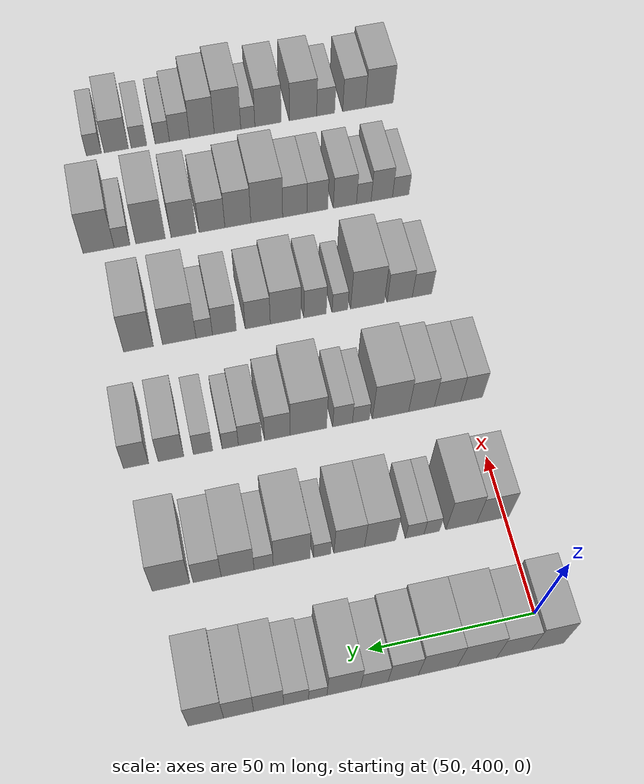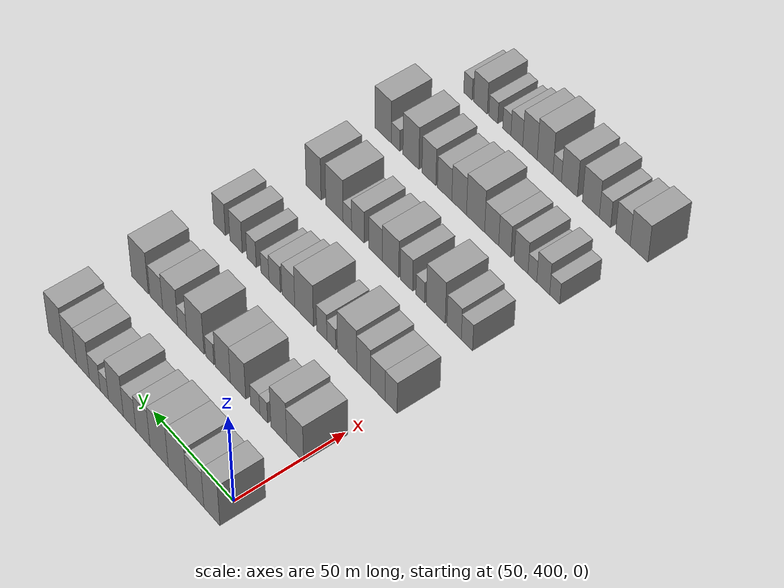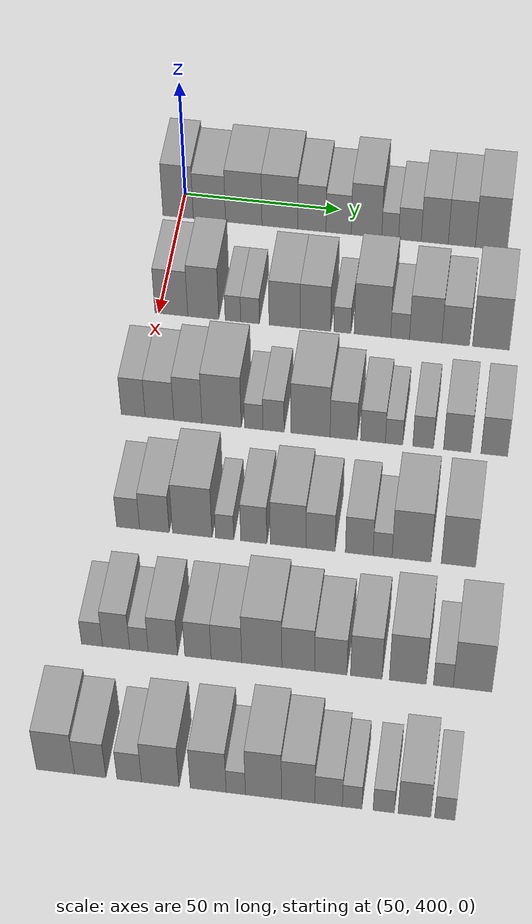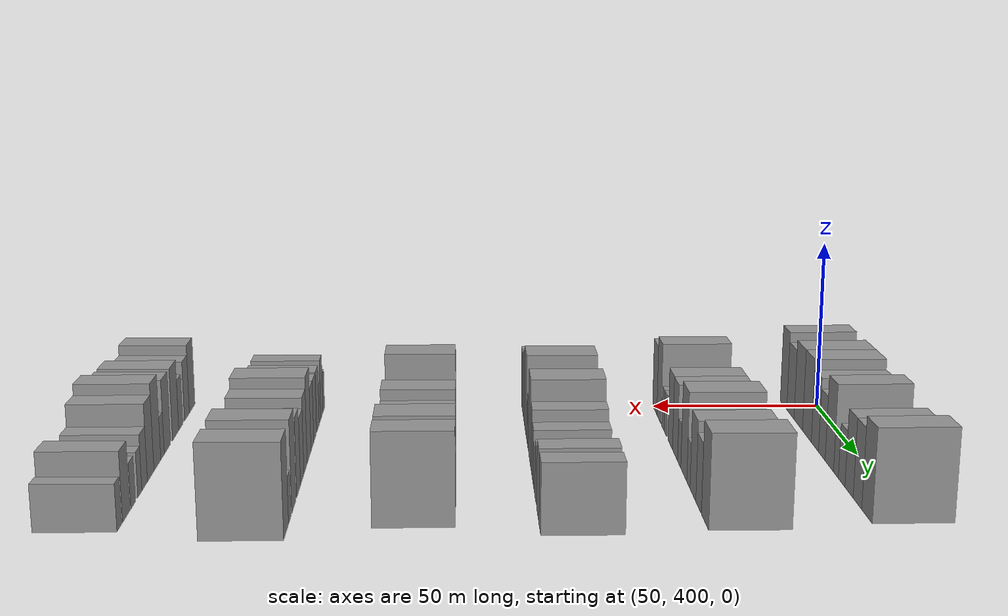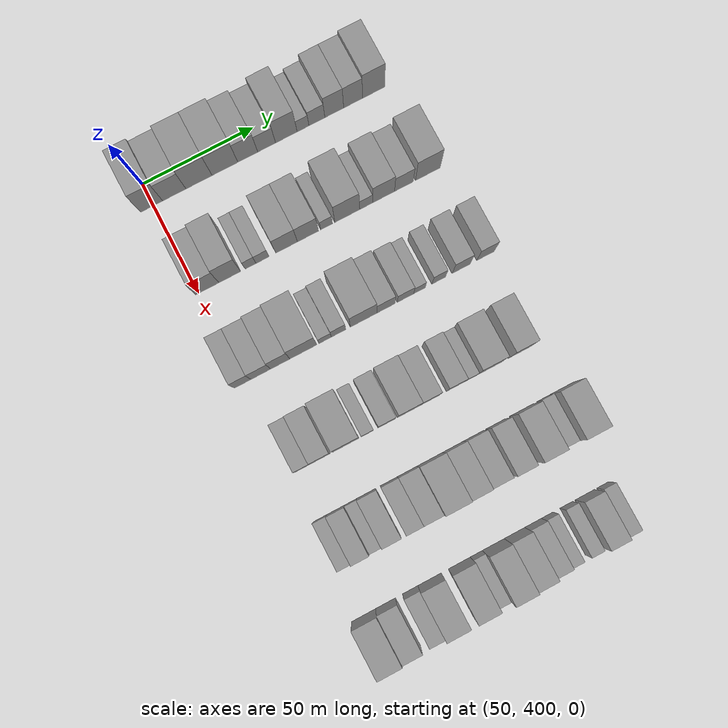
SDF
<sdf version="1.6">
 <world name="default">
  <model name="building_118">
   <static>1</static>
   <pose>50.0000 399.3098 0 0.000000 0.000000 0.000000</pose>
   <link name="link">
    <pose>0 0 12.00 0 0 0</pose>
    <collision name="collision"><geometry><box><size>20.0000 9.7949 24.0000</size></box></geometry></collision>
    <visual name="visual">
     <cast_shadows>0</cast_shadows>
     <geometry><box><size>20.0000 9.7949 24.0000</size></box></geometry>
     <material>
      <script>
       <uri>model://grey_wall/materials/scripts</uri>
       <uri>model://grey_wall/materials/textures</uri>
       <name>vrc/grey_wall</name>
      </script>
     </material>
    </visual>
   </link>
  </model>
  <model name="building_119">
   <static>1</static>
   <pose>50.0000 409.4049 0 0.000000 0.000000 0.000000</pose>
   <link name="link">
    <pose>0 0 10.50 0 0 0</pose>
    <collision name="collision"><geometry><box><size>20.0000 10.3953 21.0000</size></box></geometry></collision>
    <visual name="visual">
     <cast_shadows>0</cast_shadows>
     <geometry><box><size>20.0000 10.3953 21.0000</size></box></geometry>
     <material>
      <script>
       <uri>model://grey_wall/materials/scripts</uri>
       <uri>model://grey_wall/materials/textures</uri>
       <name>vrc/grey_wall</name>
      </script>
     </material>
    </visual>
   </link>
  </model>
  <model name="building_120">
   <static>1</static>
   <pose>50.0000 420.4561 0 0.000000 0.000000 0.000000</pose>
   <link name="link">
    <pose>0 0 12.00 0 0 0</pose>
    <collision name="collision"><geometry><box><size>20.0000 11.7071 24.0000</size></box></geometry></collision>
    <visual name="visual">
     <cast_shadows>0</cast_shadows>
     <geometry><box><size>20.0000 11.7071 24.0000</size></box></geometry>
     <material>
      <script>
       <uri>model://grey_wall/materials/scripts</uri>
       <uri>model://grey_wall/materials/textures</uri>
       <name>vrc/grey_wall</name>
      </script>
     </material>
    </visual>
   </link>
  </model>
  <model name="building_121">
   <static>1</static>
   <pose>50.0000 432.0817 0 0.000000 0.000000 0.000000</pose>
   <link name="link">
    <pose>0 0 12.00 0 0 0</pose>
    <collision name="collision"><geometry><box><size>20.0000 11.5442 24.0000</size></box></geometry></collision>
    <visual name="visual">
     <cast_shadows>0</cast_shadows>
     <geometry><box><size>20.0000 11.5442 24.0000</size></box></geometry>
     <material>
      <script>
       <uri>model://grey_wall/materials/scripts</uri>
       <uri>model://grey_wall/materials/textures</uri>
       <name>vrc/grey_wall</name>
      </script>
     </material>
    </visual>
   </link>
  </model>
  <model name="building_122">
   <static>1</static>
   <pose>50.0000 442.3535 0 0.000000 0.000000 0.000000</pose>
   <link name="link">
    <pose>0 0 10.50 0 0 0</pose>
    <collision name="collision"><geometry><box><size>20.0000 8.9993 21.0000</size></box></geometry></collision>
    <visual name="visual">
     <cast_shadows>0</cast_shadows>
     <geometry><box><size>20.0000 8.9993 21.0000</size></box></geometry>
     <material>
      <script>
       <uri>model://grey_wall/materials/scripts</uri>
       <uri>model://grey_wall/materials/textures</uri>
       <name>vrc/grey_wall</name>
      </script>
     </material>
    </visual>
   </link>
  </model>
  <model name="building_123">
   <static>1</static>
   <pose>50.0000 450.8728 0 0.000000 0.000000 0.000000</pose>
   <link name="link">
    <pose>0 0 9.00 0 0 0</pose>
    <collision name="collision"><geometry><box><size>20.0000 8.0392 18.0000</size></box></geometry></collision>
    <visual name="visual">
     <cast_shadows>0</cast_shadows>
     <geometry><box><size>20.0000 8.0392 18.0000</size></box></geometry>
     <material>
      <script>
       <uri>model://grey_wall/materials/scripts</uri>
       <uri>model://grey_wall/materials/textures</uri>
       <name>vrc/grey_wall</name>
      </script>
     </material>
    </visual>
   </link>
  </model>
  <model name="building_124">
   <static>1</static>
   <pose>50.0000 459.7650 0 0.000000 0.000000 0.000000</pose>
   <link name="link">
    <pose>0 0 12.00 0 0 0</pose>
    <collision name="collision"><geometry><box><size>20.0000 9.7453 24.0000</size></box></geometry></collision>
    <visual name="visual">
     <cast_shadows>0</cast_shadows>
     <geometry><box><size>20.0000 9.7453 24.0000</size></box></geometry>
     <material>
      <script>
       <uri>model://grey_wall/materials/scripts</uri>
       <uri>model://grey_wall/materials/textures</uri>
       <name>vrc/grey_wall</name>
      </script>
     </material>
    </visual>
   </link>
  </model>
  <model name="building_125">
   <static>1</static>
   <pose>50.0000 467.3127 0 0.000000 0.000000 0.000000</pose>
   <link name="link">
    <pose>0 0 6.00 0 0 0</pose>
    <collision name="collision"><geometry><box><size>20.0000 5.3501 12.0000</size></box></geometry></collision>
    <visual name="visual">
     <cast_shadows>0</cast_shadows>
     <geometry><box><size>20.0000 5.3501 12.0000</size></box></geometry>
     <material>
      <script>
       <uri>model://grey_wall/materials/scripts</uri>
       <uri>model://grey_wall/materials/textures</uri>
       <name>vrc/grey_wall</name>
      </script>
     </material>
    </visual>
   </link>
  </model>
  <model name="building_126">
   <static>1</static>
   <pose>50.0000 473.5926 0 0.000000 0.000000 0.000000</pose>
   <link name="link">
    <pose>0 0 7.50 0 0 0</pose>
    <collision name="collision"><geometry><box><size>20.0000 7.2097 15.0000</size></box></geometry></collision>
    <visual name="visual">
     <cast_shadows>0</cast_shadows>
     <geometry><box><size>20.0000 7.2097 15.0000</size></box></geometry>
     <material>
      <script>
       <uri>model://grey_wall/materials/scripts</uri>
       <uri>model://grey_wall/materials/textures</uri>
       <name>vrc/grey_wall</name>
      </script>
     </material>
    </visual>
   </link>
  </model>
  <model name="building_127">
   <static>1</static>
   <pose>50.0000 481.4805 0 0.000000 0.000000 0.000000</pose>
   <link name="link">
    <pose>0 0 10.50 0 0 0</pose>
    <collision name="collision"><geometry><box><size>20.0000 8.5662 21.0000</size></box></geometry></collision>
    <visual name="visual">
     <cast_shadows>0</cast_shadows>
     <geometry><box><size>20.0000 8.5662 21.0000</size></box></geometry>
     <material>
      <script>
       <uri>model://grey_wall/materials/scripts</uri>
       <uri>model://grey_wall/materials/textures</uri>
       <name>vrc/grey_wall</name>
      </script>
     </material>
    </visual>
   </link>
  </model>
  <model name="building_128">
   <static>1</static>
   <pose>50.0000 490.0491 0 0.000000 0.000000 0.000000</pose>
   <link name="link">
    <pose>0 0 10.50 0 0 0</pose>
    <collision name="collision"><geometry><box><size>20.0000 8.5709 21.0000</size></box></geometry></collision>
    <visual name="visual">
     <cast_shadows>0</cast_shadows>
     <geometry><box><size>20.0000 8.5709 21.0000</size></box></geometry>
     <material>
      <script>
       <uri>model://grey_wall/materials/scripts</uri>
       <uri>model://grey_wall/materials/textures</uri>
       <name>vrc/grey_wall</name>
      </script>
     </material>
    </visual>
   </link>
  </model>
  <model name="building_129">
   <static>1</static>
   <pose>50.0000 499.3868 0 0.000000 0.000000 0.000000</pose>
   <link name="link">
    <pose>0 0 12.00 0 0 0</pose>
    <collision name="collision"><geometry><box><size>20.0000 10.1045 24.0000</size></box></geometry></collision>
    <visual name="visual">
     <cast_shadows>0</cast_shadows>
     <geometry><box><size>20.0000 10.1045 24.0000</size></box></geometry>
     <material>
      <script>
       <uri>model://grey_wall/materials/scripts</uri>
       <uri>model://grey_wall/materials/textures</uri>
       <name>vrc/grey_wall</name>
      </script>
     </material>
    </visual>
   </link>
  </model>
  <model name="building_239">
   <static>1</static>
   <pose>90.0000 403.8618 0 0.000000 0.000000 0.000000</pose>
   <link name="link">
    <pose>0 0 10.50 0 0 0</pose>
    <collision name="collision"><geometry><box><size>20.0000 10.2549 21.0000</size></box></geometry></collision>
    <visual name="visual">
     <cast_shadows>0</cast_shadows>
     <geometry><box><size>20.0000 10.2549 21.0000</size></box></geometry>
     <material>
      <script>
       <uri>model://grey_wall/materials/scripts</uri>
       <uri>model://grey_wall/materials/textures</uri>
       <name>vrc/grey_wall</name>
      </script>
     </material>
    </visual>
   </link>
  </model>
  <model name="building_240">
   <static>1</static>
   <pose>90.0000 413.8227 0 0.000000 0.000000 0.000000</pose>
   <link name="link">
    <pose>0 0 12.00 0 0 0</pose>
    <collision name="collision"><geometry><box><size>20.0000 9.6669 24.0000</size></box></geometry></collision>
    <visual name="visual">
     <cast_shadows>0</cast_shadows>
     <geometry><box><size>20.0000 9.6669 24.0000</size></box></geometry>
     <material>
      <script>
       <uri>model://grey_wall/materials/scripts</uri>
       <uri>model://grey_wall/materials/textures</uri>
       <name>vrc/grey_wall</name>
      </script>
     </material>
    </visual>
   </link>
  </model>
  <model name="building_241">
   <static>1</static>
   <pose>90.0000 423.0763 0 0.000000 0.000000 0.000000</pose>
   <link name="link">
    <pose>0 0 6.00 0 0 0</pose>
    <collision name="collision"><geometry><box><size>20.0000 4.8404 12.0000</size></box></geometry></collision>
    <visual name="visual">
     <cast_shadows>0</cast_shadows>
     <geometry><box><size>20.0000 4.8404 12.0000</size></box></geometry>
     <material>
      <script>
       <uri>model://grey_wall/materials/scripts</uri>
       <uri>model://grey_wall/materials/textures</uri>
       <name>vrc/grey_wall</name>
      </script>
     </material>
    </visual>
   </link>
  </model>
  <model name="building_242">
   <static>1</static>
   <pose>90.0000 428.3916 0 0.000000 0.000000 0.000000</pose>
   <link name="link">
    <pose>0 0 6.00 0 0 0</pose>
    <collision name="collision"><geometry><box><size>20.0000 5.7902 12.0000</size></box></geometry></collision>
    <visual name="visual">
     <cast_shadows>0</cast_shadows>
     <geometry><box><size>20.0000 5.7902 12.0000</size></box></geometry>
     <material>
      <script>
       <uri>model://grey_wall/materials/scripts</uri>
       <uri>model://grey_wall/materials/textures</uri>
       <name>vrc/grey_wall</name>
      </script>
     </material>
    </visual>
   </link>
  </model>
  <model name="building_243">
   <static>1</static>
   <pose>90.0000 439.1144 0 0.000000 0.000000 0.000000</pose>
   <link name="link">
    <pose>0 0 10.50 0 0 0</pose>
    <collision name="collision"><geometry><box><size>20.0000 9.6554 21.0000</size></box></geometry></collision>
    <visual name="visual">
     <cast_shadows>0</cast_shadows>
     <geometry><box><size>20.0000 9.6554 21.0000</size></box></geometry>
     <material>
      <script>
       <uri>model://grey_wall/materials/scripts</uri>
       <uri>model://grey_wall/materials/textures</uri>
       <name>vrc/grey_wall</name>
      </script>
     </material>
    </visual>
   </link>
  </model>
  <model name="building_244">
   <static>1</static>
   <pose>90.0000 448.6526 0 0.000000 0.000000 0.000000</pose>
   <link name="link">
    <pose>0 0 10.50 0 0 0</pose>
    <collision name="collision"><geometry><box><size>20.0000 9.4209 21.0000</size></box></geometry></collision>
    <visual name="visual">
     <cast_shadows>0</cast_shadows>
     <geometry><box><size>20.0000 9.4209 21.0000</size></box></geometry>
     <material>
      <script>
       <uri>model://grey_wall/materials/scripts</uri>
       <uri>model://grey_wall/materials/textures</uri>
       <name>vrc/grey_wall</name>
      </script>
     </material>
    </visual>
   </link>
  </model>
  <model name="building_245">
   <static>1</static>
   <pose>90.0000 457.0081 0 0.000000 0.000000 0.000000</pose>
   <link name="link">
    <pose>0 0 6.00 0 0 0</pose>
    <collision name="collision"><geometry><box><size>20.0000 5.2902 12.0000</size></box></geometry></collision>
    <visual name="visual">
     <cast_shadows>0</cast_shadows>
     <geometry><box><size>20.0000 5.2902 12.0000</size></box></geometry>
     <material>
      <script>
       <uri>model://grey_wall/materials/scripts</uri>
       <uri>model://grey_wall/materials/textures</uri>
       <name>vrc/grey_wall</name>
      </script>
     </material>
    </visual>
   </link>
  </model>
  <model name="building_246">
   <static>1</static>
   <pose>90.0000 466.2679 0 0.000000 0.000000 0.000000</pose>
   <link name="link">
    <pose>0 0 12.00 0 0 0</pose>
    <collision name="collision"><geometry><box><size>20.0000 11.2294 24.0000</size></box></geometry></collision>
    <visual name="visual">
     <cast_shadows>0</cast_shadows>
     <geometry><box><size>20.0000 11.2294 24.0000</size></box></geometry>
     <material>
      <script>
       <uri>model://grey_wall/materials/scripts</uri>
       <uri>model://grey_wall/materials/textures</uri>
       <name>vrc/grey_wall</name>
      </script>
     </material>
    </visual>
   </link>
  </model>
  <model name="building_247">
   <static>1</static>
   <pose>90.0000 474.7799 0 0.000000 0.000000 0.000000</pose>
   <link name="link">
    <pose>0 0 6.00 0 0 0</pose>
    <collision name="collision"><geometry><box><size>20.0000 5.7946 12.0000</size></box></geometry></collision>
    <visual name="visual">
     <cast_shadows>0</cast_shadows>
     <geometry><box><size>20.0000 5.7946 12.0000</size></box></geometry>
     <material>
      <script>
       <uri>model://grey_wall/materials/scripts</uri>
       <uri>model://grey_wall/materials/textures</uri>
       <name>vrc/grey_wall</name>
      </script>
     </material>
    </visual>
   </link>
  </model>
  <model name="building_248">
   <static>1</static>
   <pose>90.0000 482.6432 0 0.000000 0.000000 0.000000</pose>
   <link name="link">
    <pose>0 0 10.50 0 0 0</pose>
    <collision name="collision"><geometry><box><size>20.0000 9.9320 21.0000</size></box></geometry></collision>
    <visual name="visual">
     <cast_shadows>0</cast_shadows>
     <geometry><box><size>20.0000 9.9320 21.0000</size></box></geometry>
     <material>
      <script>
       <uri>model://grey_wall/materials/scripts</uri>
       <uri>model://grey_wall/materials/textures</uri>
       <name>vrc/grey_wall</name>
      </script>
     </material>
    </visual>
   </link>
  </model>
  <model name="building_249">
   <static>1</static>
   <pose>90.0000 491.8241 0 0.000000 0.000000 0.000000</pose>
   <link name="link">
    <pose>0 0 9.00 0 0 0</pose>
    <collision name="collision"><geometry><box><size>20.0000 8.4297 18.0000</size></box></geometry></collision>
    <visual name="visual">
     <cast_shadows>0</cast_shadows>
     <geometry><box><size>20.0000 8.4297 18.0000</size></box></geometry>
     <material>
      <script>
       <uri>model://grey_wall/materials/scripts</uri>
       <uri>model://grey_wall/materials/textures</uri>
       <name>vrc/grey_wall</name>
      </script>
     </material>
    </visual>
   </link>
  </model>
  <model name="building_250">
   <static>1</static>
   <pose>90.0000 502.6548 0 0.000000 0.000000 0.000000</pose>
   <link name="link">
    <pose>0 0 12.00 0 0 0</pose>
    <collision name="collision"><geometry><box><size>20.0000 11.2319 24.0000</size></box></geometry></collision>
    <visual name="visual">
     <cast_shadows>0</cast_shadows>
     <geometry><box><size>20.0000 11.2319 24.0000</size></box></geometry>
     <material>
      <script>
       <uri>model://grey_wall/materials/scripts</uri>
       <uri>model://grey_wall/materials/textures</uri>
       <name>vrc/grey_wall</name>
      </script>
     </material>
    </visual>
   </link>
  </model>
  <model name="building_373">
   <static>1</static>
   <pose>130.0000 399.0765 0 0.000000 0.000000 0.000000</pose>
   <link name="link">
    <pose>0 0 9.00 0 0 0</pose>
    <collision name="collision"><geometry><box><size>20.0000 7.2151 18.0000</size></box></geometry></collision>
    <visual name="visual">
     <cast_shadows>0</cast_shadows>
     <geometry><box><size>20.0000 7.2151 18.0000</size></box></geometry>
     <material>
      <script>
       <uri>model://grey_wall/materials/scripts</uri>
       <uri>model://grey_wall/materials/textures</uri>
       <name>vrc/grey_wall</name>
      </script>
     </material>
    </visual>
   </link>
  </model>
  <model name="building_374">
   <static>1</static>
   <pose>130.0000 407.0105 0 0.000000 0.000000 0.000000</pose>
   <link name="link">
    <pose>0 0 9.00 0 0 0</pose>
    <collision name="collision"><geometry><box><size>20.0000 8.6527 18.0000</size></box></geometry></collision>
    <visual name="visual">
     <cast_shadows>0</cast_shadows>
     <geometry><box><size>20.0000 8.6527 18.0000</size></box></geometry>
     <material>
      <script>
       <uri>model://grey_wall/materials/scripts</uri>
       <uri>model://grey_wall/materials/textures</uri>
       <name>vrc/grey_wall</name>
      </script>
     </material>
    </visual>
   </link>
  </model>
  <model name="building_375">
   <static>1</static>
   <pose>130.0000 415.5756 0 0.000000 0.000000 0.000000</pose>
   <link name="link">
    <pose>0 0 10.50 0 0 0</pose>
    <collision name="collision"><geometry><box><size>20.0000 8.4777 21.0000</size></box></geometry></collision>
    <visual name="visual">
     <cast_shadows>0</cast_shadows>
     <geometry><box><size>20.0000 8.4777 21.0000</size></box></geometry>
     <material>
      <script>
       <uri>model://grey_wall/materials/scripts</uri>
       <uri>model://grey_wall/materials/textures</uri>
       <name>vrc/grey_wall</name>
      </script>
     </material>
    </visual>
   </link>
  </model>
  <model name="building_376">
   <static>1</static>
   <pose>130.0000 425.7282 0 0.000000 0.000000 0.000000</pose>
   <link name="link">
    <pose>0 0 12.00 0 0 0</pose>
    <collision name="collision"><geometry><box><size>20.0000 11.8275 24.0000</size></box></geometry></collision>
    <visual name="visual">
     <cast_shadows>0</cast_shadows>
     <geometry><box><size>20.0000 11.8275 24.0000</size></box></geometry>
     <material>
      <script>
       <uri>model://grey_wall/materials/scripts</uri>
       <uri>model://grey_wall/materials/textures</uri>
       <name>vrc/grey_wall</name>
      </script>
     </material>
    </visual>
   </link>
  </model>
  <model name="building_377">
   <static>1</static>
   <pose>130.0000 435.3928 0 0.000000 0.000000 0.000000</pose>
   <link name="link">
    <pose>0 0 6.00 0 0 0</pose>
    <collision name="collision"><geometry><box><size>20.0000 5.5018 12.0000</size></box></geometry></collision>
    <visual name="visual">
     <cast_shadows>0</cast_shadows>
     <geometry><box><size>20.0000 5.5018 12.0000</size></box></geometry>
     <material>
      <script>
       <uri>model://grey_wall/materials/scripts</uri>
       <uri>model://grey_wall/materials/textures</uri>
       <name>vrc/grey_wall</name>
      </script>
     </material>
    </visual>
   </link>
  </model>
  <model name="building_378">
   <static>1</static>
   <pose>130.0000 441.3277 0 0.000000 0.000000 0.000000</pose>
   <link name="link">
    <pose>0 0 7.50 0 0 0</pose>
    <collision name="collision"><geometry><box><size>20.0000 6.3680 15.0000</size></box></geometry></collision>
    <visual name="visual">
     <cast_shadows>0</cast_shadows>
     <geometry><box><size>20.0000 6.3680 15.0000</size></box></geometry>
     <material>
      <script>
       <uri>model://grey_wall/materials/scripts</uri>
       <uri>model://grey_wall/materials/textures</uri>
       <name>vrc/grey_wall</name>
      </script>
     </material>
    </visual>
   </link>
  </model>
  <model name="building_379">
   <static>1</static>
   <pose>130.0000 452.3756 0 0.000000 0.000000 0.000000</pose>
   <link name="link">
    <pose>0 0 12.00 0 0 0</pose>
    <collision name="collision"><geometry><box><size>20.0000 11.7278 24.0000</size></box></geometry></collision>
    <visual name="visual">
     <cast_shadows>0</cast_shadows>
     <geometry><box><size>20.0000 11.7278 24.0000</size></box></geometry>
     <material>
      <script>
       <uri>model://grey_wall/materials/scripts</uri>
       <uri>model://grey_wall/materials/textures</uri>
       <name>vrc/grey_wall</name>
      </script>
     </material>
    </visual>
   </link>
  </model>
  <model name="building_380">
   <static>1</static>
   <pose>130.0000 462.3001 0 0.000000 0.000000 0.000000</pose>
   <link name="link">
    <pose>0 0 9.00 0 0 0</pose>
    <collision name="collision"><geometry><box><size>20.0000 8.1212 18.0000</size></box></geometry></collision>
    <visual name="visual">
     <cast_shadows>0</cast_shadows>
     <geometry><box><size>20.0000 8.1212 18.0000</size></box></geometry>
     <material>
      <script>
       <uri>model://grey_wall/materials/scripts</uri>
       <uri>model://grey_wall/materials/textures</uri>
       <name>vrc/grey_wall</name>
      </script>
     </material>
    </visual>
   </link>
  </model>
  <model name="building_381">
   <static>1</static>
   <pose>130.0000 471.0426 0 0.000000 0.000000 0.000000</pose>
   <link name="link">
    <pose>0 0 7.50 0 0 0</pose>
    <collision name="collision"><geometry><box><size>20.0000 7.3638 15.0000</size></box></geometry></collision>
    <visual name="visual">
     <cast_shadows>0</cast_shadows>
     <geometry><box><size>20.0000 7.3638 15.0000</size></box></geometry>
     <material>
      <script>
       <uri>model://grey_wall/materials/scripts</uri>
       <uri>model://grey_wall/materials/textures</uri>
       <name>vrc/grey_wall</name>
      </script>
     </material>
    </visual>
   </link>
  </model>
  <model name="building_382">
   <static>1</static>
   <pose>130.0000 477.3054 0 0.000000 0.000000 0.000000</pose>
   <link name="link">
    <pose>0 0 6.00 0 0 0</pose>
    <collision name="collision"><geometry><box><size>20.0000 5.1617 12.0000</size></box></geometry></collision>
    <visual name="visual">
     <cast_shadows>0</cast_shadows>
     <geometry><box><size>20.0000 5.1617 12.0000</size></box></geometry>
     <material>
      <script>
       <uri>model://grey_wall/materials/scripts</uri>
       <uri>model://grey_wall/materials/textures</uri>
       <name>vrc/grey_wall</name>
      </script>
     </material>
    </visual>
   </link>
  </model>
  <model name="building_383">
   <static>1</static>
   <pose>130.0000 485.9417 0 0.000000 0.000000 0.000000</pose>
   <link name="link">
    <pose>0 0 7.50 0 0 0</pose>
    <collision name="collision"><geometry><box><size>20.0000 6.1109 15.0000</size></box></geometry></collision>
    <visual name="visual">
     <cast_shadows>0</cast_shadows>
     <geometry><box><size>20.0000 6.1109 15.0000</size></box></geometry>
     <material>
      <script>
       <uri>model://grey_wall/materials/scripts</uri>
       <uri>model://grey_wall/materials/textures</uri>
       <name>vrc/grey_wall</name>
      </script>
     </material>
    </visual>
   </link>
  </model>
  <model name="building_384">
   <static>1</static>
   <pose>130.0000 496.0381 0 0.000000 0.000000 0.000000</pose>
   <link name="link">
    <pose>0 0 9.00 0 0 0</pose>
    <collision name="collision"><geometry><box><size>20.0000 8.0819 18.0000</size></box></geometry></collision>
    <visual name="visual">
     <cast_shadows>0</cast_shadows>
     <geometry><box><size>20.0000 8.0819 18.0000</size></box></geometry>
     <material>
      <script>
       <uri>model://grey_wall/materials/scripts</uri>
       <uri>model://grey_wall/materials/textures</uri>
       <name>vrc/grey_wall</name>
      </script>
     </material>
    </visual>
   </link>
  </model>
  <model name="building_385">
   <static>1</static>
   <pose>130.0000 507.0114 0 0.000000 0.000000 0.000000</pose>
   <link name="link">
    <pose>0 0 9.00 0 0 0</pose>
    <collision name="collision"><geometry><box><size>20.0000 7.8647 18.0000</size></box></geometry></collision>
    <visual name="visual">
     <cast_shadows>0</cast_shadows>
     <geometry><box><size>20.0000 7.8647 18.0000</size></box></geometry>
     <material>
      <script>
       <uri>model://grey_wall/materials/scripts</uri>
       <uri>model://grey_wall/materials/textures</uri>
       <name>vrc/grey_wall</name>
      </script>
     </material>
    </visual>
   </link>
  </model>
  <model name="building_521">
   <static>1</static>
   <pose>170.0000 404.7446 0 0.000000 0.000000 0.000000</pose>
   <link name="link">
    <pose>0 0 7.50 0 0 0</pose>
    <collision name="collision"><geometry><box><size>20.0000 6.6881 15.0000</size></box></geometry></collision>
    <visual name="visual">
     <cast_shadows>0</cast_shadows>
     <geometry><box><size>20.0000 6.6881 15.0000</size></box></geometry>
     <material>
      <script>
       <uri>model://grey_wall/materials/scripts</uri>
       <uri>model://grey_wall/materials/textures</uri>
       <name>vrc/grey_wall</name>
      </script>
     </material>
    </visual>
   </link>
  </model>
  <model name="building_522">
   <static>1</static>
   <pose>170.0000 412.3998 0 0.000000 0.000000 0.000000</pose>
   <link name="link">
    <pose>0 0 9.00 0 0 0</pose>
    <collision name="collision"><geometry><box><size>20.0000 8.6223 18.0000</size></box></geometry></collision>
    <visual name="visual">
     <cast_shadows>0</cast_shadows>
     <geometry><box><size>20.0000 8.6223 18.0000</size></box></geometry>
     <material>
      <script>
       <uri>model://grey_wall/materials/scripts</uri>
       <uri>model://grey_wall/materials/textures</uri>
       <name>vrc/grey_wall</name>
      </script>
     </material>
    </visual>
   </link>
  </model>
  <model name="building_523">
   <static>1</static>
   <pose>170.0000 423.4497 0 0.000000 0.000000 0.000000</pose>
   <link name="link">
    <pose>0 0 12.00 0 0 0</pose>
    <collision name="collision"><geometry><box><size>20.0000 11.4775 24.0000</size></box></geometry></collision>
    <visual name="visual">
     <cast_shadows>0</cast_shadows>
     <geometry><box><size>20.0000 11.4775 24.0000</size></box></geometry>
     <material>
      <script>
       <uri>model://grey_wall/materials/scripts</uri>
       <uri>model://grey_wall/materials/textures</uri>
       <name>vrc/grey_wall</name>
      </script>
     </material>
    </visual>
   </link>
  </model>
  <model name="building_524">
   <static>1</static>
   <pose>170.0000 432.8402 0 0.000000 0.000000 0.000000</pose>
   <link name="link">
    <pose>0 0 6.00 0 0 0</pose>
    <collision name="collision"><geometry><box><size>20.0000 5.3037 12.0000</size></box></geometry></collision>
    <visual name="visual">
     <cast_shadows>0</cast_shadows>
     <geometry><box><size>20.0000 5.3037 12.0000</size></box></geometry>
     <material>
      <script>
       <uri>model://grey_wall/materials/scripts</uri>
       <uri>model://grey_wall/materials/textures</uri>
       <name>vrc/grey_wall</name>
      </script>
     </material>
    </visual>
   </link>
  </model>
  <model name="building_525">
   <static>1</static>
   <pose>170.0000 441.2734 0 0.000000 0.000000 0.000000</pose>
   <link name="link">
    <pose>0 0 9.00 0 0 0</pose>
    <collision name="collision"><geometry><box><size>20.0000 7.5625 18.0000</size></box></geometry></collision>
    <visual name="visual">
     <cast_shadows>0</cast_shadows>
     <geometry><box><size>20.0000 7.5625 18.0000</size></box></geometry>
     <material>
      <script>
       <uri>model://grey_wall/materials/scripts</uri>
       <uri>model://grey_wall/materials/textures</uri>
       <name>vrc/grey_wall</name>
      </script>
     </material>
    </visual>
   </link>
  </model>
  <model name="building_526">
   <static>1</static>
   <pose>170.0000 451.2049 0 0.000000 0.000000 0.000000</pose>
   <link name="link">
    <pose>0 0 10.50 0 0 0</pose>
    <collision name="collision"><geometry><box><size>20.0000 10.3005 21.0000</size></box></geometry></collision>
    <visual name="visual">
     <cast_shadows>0</cast_shadows>
     <geometry><box><size>20.0000 10.3005 21.0000</size></box></geometry>
     <material>
      <script>
       <uri>model://grey_wall/materials/scripts</uri>
       <uri>model://grey_wall/materials/textures</uri>
       <name>vrc/grey_wall</name>
      </script>
     </material>
    </visual>
   </link>
  </model>
  <model name="building_527">
   <static>1</static>
   <pose>170.0000 460.5320 0 0.000000 0.000000 0.000000</pose>
   <link name="link">
    <pose>0 0 9.00 0 0 0</pose>
    <collision name="collision"><geometry><box><size>20.0000 8.3538 18.0000</size></box></geometry></collision>
    <visual name="visual">
     <cast_shadows>0</cast_shadows>
     <geometry><box><size>20.0000 8.3538 18.0000</size></box></geometry>
     <material>
      <script>
       <uri>model://grey_wall/materials/scripts</uri>
       <uri>model://grey_wall/materials/textures</uri>
       <name>vrc/grey_wall</name>
      </script>
     </material>
    </visual>
   </link>
  </model>
  <model name="building_528">
   <static>1</static>
   <pose>170.0000 471.6842 0 0.000000 0.000000 0.000000</pose>
   <link name="link">
    <pose>0 0 9.00 0 0 0</pose>
    <collision name="collision"><geometry><box><size>20.0000 7.9505 18.0000</size></box></geometry></collision>
    <visual name="visual">
     <cast_shadows>0</cast_shadows>
     <geometry><box><size>20.0000 7.9505 18.0000</size></box></geometry>
     <material>
      <script>
       <uri>model://grey_wall/materials/scripts</uri>
       <uri>model://grey_wall/materials/textures</uri>
       <name>vrc/grey_wall</name>
      </script>
     </material>
    </visual>
   </link>
  </model>
  <model name="building_529">
   <static>1</static>
   <pose>170.0000 478.3830 0 0.000000 0.000000 0.000000</pose>
   <link name="link">
    <pose>0 0 6.00 0 0 0</pose>
    <collision name="collision"><geometry><box><size>20.0000 5.4470 12.0000</size></box></geometry></collision>
    <visual name="visual">
     <cast_shadows>0</cast_shadows>
     <geometry><box><size>20.0000 5.4470 12.0000</size></box></geometry>
     <material>
      <script>
       <uri>model://grey_wall/materials/scripts</uri>
       <uri>model://grey_wall/materials/textures</uri>
       <name>vrc/grey_wall</name>
      </script>
     </material>
    </visual>
   </link>
  </model>
  <model name="building_530">
   <static>1</static>
   <pose>170.0000 486.6627 0 0.000000 0.000000 0.000000</pose>
   <link name="link">
    <pose>0 0 12.00 0 0 0</pose>
    <collision name="collision"><geometry><box><size>20.0000 11.1124 24.0000</size></box></geometry></collision>
    <visual name="visual">
     <cast_shadows>0</cast_shadows>
     <geometry><box><size>20.0000 11.1124 24.0000</size></box></geometry>
     <material>
      <script>
       <uri>model://grey_wall/materials/scripts</uri>
       <uri>model://grey_wall/materials/textures</uri>
       <name>vrc/grey_wall</name>
      </script>
     </material>
    </visual>
   </link>
  </model>
  <model name="building_531">
   <static>1</static>
   <pose>170.0000 500.1179 0 0.000000 0.000000 0.000000</pose>
   <link name="link">
    <pose>0 0 12.00 0 0 0</pose>
    <collision name="collision"><geometry><box><size>20.0000 9.7980 24.0000</size></box></geometry></collision>
    <visual name="visual">
     <cast_shadows>0</cast_shadows>
     <geometry><box><size>20.0000 9.7980 24.0000</size></box></geometry>
     <material>
      <script>
       <uri>model://grey_wall/materials/scripts</uri>
       <uri>model://grey_wall/materials/textures</uri>
       <name>vrc/grey_wall</name>
      </script>
     </material>
    </visual>
   </link>
  </model>
  <model name="building_651">
   <static>1</static>
   <pose>210.0000 401.7601 0 0.000000 0.000000 0.000000</pose>
   <link name="link">
    <pose>0 0 6.00 0 0 0</pose>
    <collision name="collision"><geometry><box><size>20.0000 5.9090 12.0000</size></box></geometry></collision>
    <visual name="visual">
     <cast_shadows>0</cast_shadows>
     <geometry><box><size>20.0000 5.9090 12.0000</size></box></geometry>
     <material>
      <script>
       <uri>model://grey_wall/materials/scripts</uri>
       <uri>model://grey_wall/materials/textures</uri>
       <name>vrc/grey_wall</name>
      </script>
     </material>
    </visual>
   </link>
  </model>
  <model name="building_652">
   <static>1</static>
   <pose>210.0000 408.5396 0 0.000000 0.000000 0.000000</pose>
   <link name="link">
    <pose>0 0 9.00 0 0 0</pose>
    <collision name="collision"><geometry><box><size>20.0000 7.6499 18.0000</size></box></geometry></collision>
    <visual name="visual">
     <cast_shadows>0</cast_shadows>
     <geometry><box><size>20.0000 7.6499 18.0000</size></box></geometry>
     <material>
      <script>
       <uri>model://grey_wall/materials/scripts</uri>
       <uri>model://grey_wall/materials/textures</uri>
       <name>vrc/grey_wall</name>
      </script>
     </material>
    </visual>
   </link>
  </model>
  <model name="building_653">
   <static>1</static>
   <pose>210.0000 414.9792 0 0.000000 0.000000 0.000000</pose>
   <link name="link">
    <pose>0 0 6.00 0 0 0</pose>
    <collision name="collision"><geometry><box><size>20.0000 5.2293 12.0000</size></box></geometry></collision>
    <visual name="visual">
     <cast_shadows>0</cast_shadows>
     <geometry><box><size>20.0000 5.2293 12.0000</size></box></geometry>
     <material>
      <script>
       <uri>model://grey_wall/materials/scripts</uri>
       <uri>model://grey_wall/materials/textures</uri>
       <name>vrc/grey_wall</name>
      </script>
     </material>
    </visual>
   </link>
  </model>
  <model name="building_654">
   <static>1</static>
   <pose>210.0000 421.7200 0 0.000000 0.000000 0.000000</pose>
   <link name="link">
    <pose>0 0 9.00 0 0 0</pose>
    <collision name="collision"><geometry><box><size>20.0000 8.2524 18.0000</size></box></geometry></collision>
    <visual name="visual">
     <cast_shadows>0</cast_shadows>
     <geometry><box><size>20.0000 8.2524 18.0000</size></box></geometry>
     <material>
      <script>
       <uri>model://grey_wall/materials/scripts</uri>
       <uri>model://grey_wall/materials/textures</uri>
       <name>vrc/grey_wall</name>
      </script>
     </material>
    </visual>
   </link>
  </model>
  <model name="building_655">
   <static>1</static>
   <pose>210.0000 431.5353 0 0.000000 0.000000 0.000000</pose>
   <link name="link">
    <pose>0 0 9.00 0 0 0</pose>
    <collision name="collision"><geometry><box><size>20.0000 7.3783 18.0000</size></box></geometry></collision>
    <visual name="visual">
     <cast_shadows>0</cast_shadows>
     <geometry><box><size>20.0000 7.3783 18.0000</size></box></geometry>
     <material>
      <script>
       <uri>model://grey_wall/materials/scripts</uri>
       <uri>model://grey_wall/materials/textures</uri>
       <name>vrc/grey_wall</name>
      </script>
     </material>
    </visual>
   </link>
  </model>
  <model name="building_656">
   <static>1</static>
   <pose>210.0000 439.5042 0 0.000000 0.000000 0.000000</pose>
   <link name="link">
    <pose>0 0 9.00 0 0 0</pose>
    <collision name="collision"><geometry><box><size>20.0000 8.5594 18.0000</size></box></geometry></collision>
    <visual name="visual">
     <cast_shadows>0</cast_shadows>
     <geometry><box><size>20.0000 8.5594 18.0000</size></box></geometry>
     <material>
      <script>
       <uri>model://grey_wall/materials/scripts</uri>
       <uri>model://grey_wall/materials/textures</uri>
       <name>vrc/grey_wall</name>
      </script>
     </material>
    </visual>
   </link>
  </model>
  <model name="building_657">
   <static>1</static>
   <pose>210.0000 449.3596 0 0.000000 0.000000 0.000000</pose>
   <link name="link">
    <pose>0 0 12.00 0 0 0</pose>
    <collision name="collision"><geometry><box><size>20.0000 11.1515 24.0000</size></box></geometry></collision>
    <visual name="visual">
     <cast_shadows>0</cast_shadows>
     <geometry><box><size>20.0000 11.1515 24.0000</size></box></geometry>
     <material>
      <script>
       <uri>model://grey_wall/materials/scripts</uri>
       <uri>model://grey_wall/materials/textures</uri>
       <name>vrc/grey_wall</name>
      </script>
     </material>
    </visual>
   </link>
  </model>
  <model name="building_658">
   <static>1</static>
   <pose>210.0000 459.4851 0 0.000000 0.000000 0.000000</pose>
   <link name="link">
    <pose>0 0 10.50 0 0 0</pose>
    <collision name="collision"><geometry><box><size>20.0000 9.0993 21.0000</size></box></geometry></collision>
    <visual name="visual">
     <cast_shadows>0</cast_shadows>
     <geometry><box><size>20.0000 9.0993 21.0000</size></box></geometry>
     <material>
      <script>
       <uri>model://grey_wall/materials/scripts</uri>
       <uri>model://grey_wall/materials/textures</uri>
       <name>vrc/grey_wall</name>
      </script>
     </material>
    </visual>
   </link>
  </model>
  <model name="building_659">
   <static>1</static>
   <pose>210.0000 468.5243 0 0.000000 0.000000 0.000000</pose>
   <link name="link">
    <pose>0 0 9.00 0 0 0</pose>
    <collision name="collision"><geometry><box><size>20.0000 8.9791 18.0000</size></box></geometry></collision>
    <visual name="visual">
     <cast_shadows>0</cast_shadows>
     <geometry><box><size>20.0000 8.9791 18.0000</size></box></geometry>
     <material>
      <script>
       <uri>model://grey_wall/materials/scripts</uri>
       <uri>model://grey_wall/materials/textures</uri>
       <name>vrc/grey_wall</name>
      </script>
     </material>
    </visual>
   </link>
  </model>
  <model name="building_660">
   <static>1</static>
   <pose>210.0000 478.3782 0 0.000000 0.000000 0.000000</pose>
   <link name="link">
    <pose>0 0 10.50 0 0 0</pose>
    <collision name="collision"><geometry><box><size>20.0000 8.7289 21.0000</size></box></geometry></collision>
    <visual name="visual">
     <cast_shadows>0</cast_shadows>
     <geometry><box><size>20.0000 8.7289 21.0000</size></box></geometry>
     <material>
      <script>
       <uri>model://grey_wall/materials/scripts</uri>
       <uri>model://grey_wall/materials/textures</uri>
       <name>vrc/grey_wall</name>
      </script>
     </material>
    </visual>
   </link>
  </model>
  <model name="building_661">
   <static>1</static>
   <pose>210.0000 489.8308 0 0.000000 0.000000 0.000000</pose>
   <link name="link">
    <pose>0 0 12.00 0 0 0</pose>
    <collision name="collision"><geometry><box><size>20.0000 10.1763 24.0000</size></box></geometry></collision>
    <visual name="visual">
     <cast_shadows>0</cast_shadows>
     <geometry><box><size>20.0000 10.1763 24.0000</size></box></geometry>
     <material>
      <script>
       <uri>model://grey_wall/materials/scripts</uri>
       <uri>model://grey_wall/materials/textures</uri>
       <name>vrc/grey_wall</name>
      </script>
     </material>
    </visual>
   </link>
  </model>
  <model name="building_662">
   <static>1</static>
   <pose>210.0000 499.6337 0 0.000000 0.000000 0.000000</pose>
   <link name="link">
    <pose>0 0 6.00 0 0 0</pose>
    <collision name="collision"><geometry><box><size>20.0000 5.4295 12.0000</size></box></geometry></collision>
    <visual name="visual">
     <cast_shadows>0</cast_shadows>
     <geometry><box><size>20.0000 5.4295 12.0000</size></box></geometry>
     <material>
      <script>
       <uri>model://grey_wall/materials/scripts</uri>
       <uri>model://grey_wall/materials/textures</uri>
       <name>vrc/grey_wall</name>
      </script>
     </material>
    </visual>
   </link>
  </model>
  <model name="building_663">
   <static>1</static>
   <pose>210.0000 507.6728 0 0.000000 0.000000 0.000000</pose>
   <link name="link">
    <pose>0 0 12.00 0 0 0</pose>
    <collision name="collision"><geometry><box><size>20.0000 10.6486 24.0000</size></box></geometry></collision>
    <visual name="visual">
     <cast_shadows>0</cast_shadows>
     <geometry><box><size>20.0000 10.6486 24.0000</size></box></geometry>
     <material>
      <script>
       <uri>model://grey_wall/materials/scripts</uri>
       <uri>model://grey_wall/materials/textures</uri>
       <name>vrc/grey_wall</name>
      </script>
     </material>
    </visual>
   </link>
  </model>
  <model name="building_791">
   <static>1</static>
   <pose>250.0000 399.4479 0 0.000000 0.000000 0.000000</pose>
   <link name="link">
    <pose>0 0 10.50 0 0 0</pose>
    <collision name="collision"><geometry><box><size>20.0000 10.3815 21.0000</size></box></geometry></collision>
    <visual name="visual">
     <cast_shadows>0</cast_shadows>
     <geometry><box><size>20.0000 10.3815 21.0000</size></box></geometry>
     <material>
      <script>
       <uri>model://grey_wall/materials/scripts</uri>
       <uri>model://grey_wall/materials/textures</uri>
       <name>vrc/grey_wall</name>
      </script>
     </material>
    </visual>
   </link>
  </model>
  <model name="building_792">
   <static>1</static>
   <pose>250.0000 408.8787 0 0.000000 0.000000 0.000000</pose>
   <link name="link">
    <pose>0 0 9.00 0 0 0</pose>
    <collision name="collision"><geometry><box><size>20.0000 8.4801 18.0000</size></box></geometry></collision>
    <visual name="visual">
     <cast_shadows>0</cast_shadows>
     <geometry><box><size>20.0000 8.4801 18.0000</size></box></geometry>
     <material>
      <script>
       <uri>model://grey_wall/materials/scripts</uri>
       <uri>model://grey_wall/materials/textures</uri>
       <name>vrc/grey_wall</name>
      </script>
     </material>
    </visual>
   </link>
  </model>
  <model name="building_793">
   <static>1</static>
   <pose>250.0000 419.4593 0 0.000000 0.000000 0.000000</pose>
   <link name="link">
    <pose>0 0 7.50 0 0 0</pose>
    <collision name="collision"><geometry><box><size>20.0000 6.6812 15.0000</size></box></geometry></collision>
    <visual name="visual">
     <cast_shadows>0</cast_shadows>
     <geometry><box><size>20.0000 6.6812 15.0000</size></box></geometry>
     <material>
      <script>
       <uri>model://grey_wall/materials/scripts</uri>
       <uri>model://grey_wall/materials/textures</uri>
       <name>vrc/grey_wall</name>
      </script>
     </material>
    </visual>
   </link>
  </model>
  <model name="building_794">
   <static>1</static>
   <pose>250.0000 427.8581 0 0.000000 0.000000 0.000000</pose>
   <link name="link">
    <pose>0 0 10.50 0 0 0</pose>
    <collision name="collision"><geometry><box><size>20.0000 10.1164 21.0000</size></box></geometry></collision>
    <visual name="visual">
     <cast_shadows>0</cast_shadows>
     <geometry><box><size>20.0000 10.1164 21.0000</size></box></geometry>
     <material>
      <script>
       <uri>model://grey_wall/materials/scripts</uri>
       <uri>model://grey_wall/materials/textures</uri>
       <name>vrc/grey_wall</name>
      </script>
     </material>
    </visual>
   </link>
  </model>
  <model name="building_795">
   <static>1</static>
   <pose>250.0000 440.7438 0 0.000000 0.000000 0.000000</pose>
   <link name="link">
    <pose>0 0 10.50 0 0 0</pose>
    <collision name="collision"><geometry><box><size>20.0000 9.6549 21.0000</size></box></geometry></collision>
    <visual name="visual">
     <cast_shadows>0</cast_shadows>
     <geometry><box><size>20.0000 9.6549 21.0000</size></box></geometry>
     <material>
      <script>
       <uri>model://grey_wall/materials/scripts</uri>
       <uri>model://grey_wall/materials/textures</uri>
       <name>vrc/grey_wall</name>
      </script>
     </material>
    </visual>
   </link>
  </model>
  <model name="building_796">
   <static>1</static>
   <pose>250.0000 448.1594 0 0.000000 0.000000 0.000000</pose>
   <link name="link">
    <pose>0 0 6.00 0 0 0</pose>
    <collision name="collision"><geometry><box><size>20.0000 5.1763 12.0000</size></box></geometry></collision>
    <visual name="visual">
     <cast_shadows>0</cast_shadows>
     <geometry><box><size>20.0000 5.1763 12.0000</size></box></geometry>
     <material>
      <script>
       <uri>model://grey_wall/materials/scripts</uri>
       <uri>model://grey_wall/materials/textures</uri>
       <name>vrc/grey_wall</name>
      </script>
     </material>
    </visual>
   </link>
  </model>
  <model name="building_797">
   <static>1</static>
   <pose>250.0000 455.5755 0 0.000000 0.000000 0.000000</pose>
   <link name="link">
    <pose>0 0 12.00 0 0 0</pose>
    <collision name="collision"><geometry><box><size>20.0000 9.6559 24.0000</size></box></geometry></collision>
    <visual name="visual">
     <cast_shadows>0</cast_shadows>
     <geometry><box><size>20.0000 9.6559 24.0000</size></box></geometry>
     <material>
      <script>
       <uri>model://grey_wall/materials/scripts</uri>
       <uri>model://grey_wall/materials/textures</uri>
       <name>vrc/grey_wall</name>
      </script>
     </material>
    </visual>
   </link>
  </model>
  <model name="building_798">
   <static>1</static>
   <pose>250.0000 464.8646 0 0.000000 0.000000 0.000000</pose>
   <link name="link">
    <pose>0 0 10.50 0 0 0</pose>
    <collision name="collision"><geometry><box><size>20.0000 8.9221 21.0000</size></box></geometry></collision>
    <visual name="visual">
     <cast_shadows>0</cast_shadows>
     <geometry><box><size>20.0000 8.9221 21.0000</size></box></geometry>
     <material>
      <script>
       <uri>model://grey_wall/materials/scripts</uri>
       <uri>model://grey_wall/materials/textures</uri>
       <name>vrc/grey_wall</name>
      </script>
     </material>
    </visual>
   </link>
  </model>
  <model name="building_799">
   <static>1</static>
   <pose>250.0000 473.0041 0 0.000000 0.000000 0.000000</pose>
   <link name="link">
    <pose>0 0 7.50 0 0 0</pose>
    <collision name="collision"><geometry><box><size>20.0000 7.3570 15.0000</size></box></geometry></collision>
    <visual name="visual">
     <cast_shadows>0</cast_shadows>
     <geometry><box><size>20.0000 7.3570 15.0000</size></box></geometry>
     <material>
      <script>
       <uri>model://grey_wall/materials/scripts</uri>
       <uri>model://grey_wall/materials/textures</uri>
       <name>vrc/grey_wall</name>
      </script>
     </material>
    </visual>
   </link>
  </model>
  <model name="building_800">
   <static>1</static>
   <pose>250.0000 479.2758 0 0.000000 0.000000 0.000000</pose>
   <link name="link">
    <pose>0 0 6.00 0 0 0</pose>
    <collision name="collision"><geometry><box><size>20.0000 5.1864 12.0000</size></box></geometry></collision>
    <visual name="visual">
     <cast_shadows>0</cast_shadows>
     <geometry><box><size>20.0000 5.1864 12.0000</size></box></geometry>
     <material>
      <script>
       <uri>model://grey_wall/materials/scripts</uri>
       <uri>model://grey_wall/materials/textures</uri>
       <name>vrc/grey_wall</name>
      </script>
     </material>
    </visual>
   </link>
  </model>
  <model name="building_801">
   <static>1</static>
   <pose>250.0000 487.6863 0 0.000000 0.000000 0.000000</pose>
   <link name="link">
    <pose>0 0 6.00 0 0 0</pose>
    <collision name="collision"><geometry><box><size>20.0000 5.6346 12.0000</size></box></geometry></collision>
    <visual name="visual">
     <cast_shadows>0</cast_shadows>
     <geometry><box><size>20.0000 5.6346 12.0000</size></box></geometry>
     <material>
      <script>
       <uri>model://grey_wall/materials/scripts</uri>
       <uri>model://grey_wall/materials/textures</uri>
       <name>vrc/grey_wall</name>
      </script>
     </material>
    </visual>
   </link>
  </model>
  <model name="building_802">
   <static>1</static>
   <pose>250.0000 495.8411 0 0.000000 0.000000 0.000000</pose>
   <link name="link">
    <pose>0 0 9.00 0 0 0</pose>
    <collision name="collision"><geometry><box><size>20.0000 8.6750 18.0000</size></box></geometry></collision>
    <visual name="visual">
     <cast_shadows>0</cast_shadows>
     <geometry><box><size>20.0000 8.6750 18.0000</size></box></geometry>
     <material>
      <script>
       <uri>model://grey_wall/materials/scripts</uri>
       <uri>model://grey_wall/materials/textures</uri>
       <name>vrc/grey_wall</name>
      </script>
     </material>
    </visual>
   </link>
  </model>
  <model name="building_803">
   <static>1</static>
   <pose>250.0000 503.8677 0 0.000000 0.000000 0.000000</pose>
   <link name="link">
    <pose>0 0 6.00 0 0 0</pose>
    <collision name="collision"><geometry><box><size>20.0000 5.3783 12.0000</size></box></geometry></collision>
    <visual name="visual">
     <cast_shadows>0</cast_shadows>
     <geometry><box><size>20.0000 5.3783 12.0000</size></box></geometry>
     <material>
      <script>
       <uri>model://grey_wall/materials/scripts</uri>
       <uri>model://grey_wall/materials/textures</uri>
       <name>vrc/grey_wall</name>
      </script>
     </material>
    </visual>
   </link>
  </model>
 </world>
</sdf>
